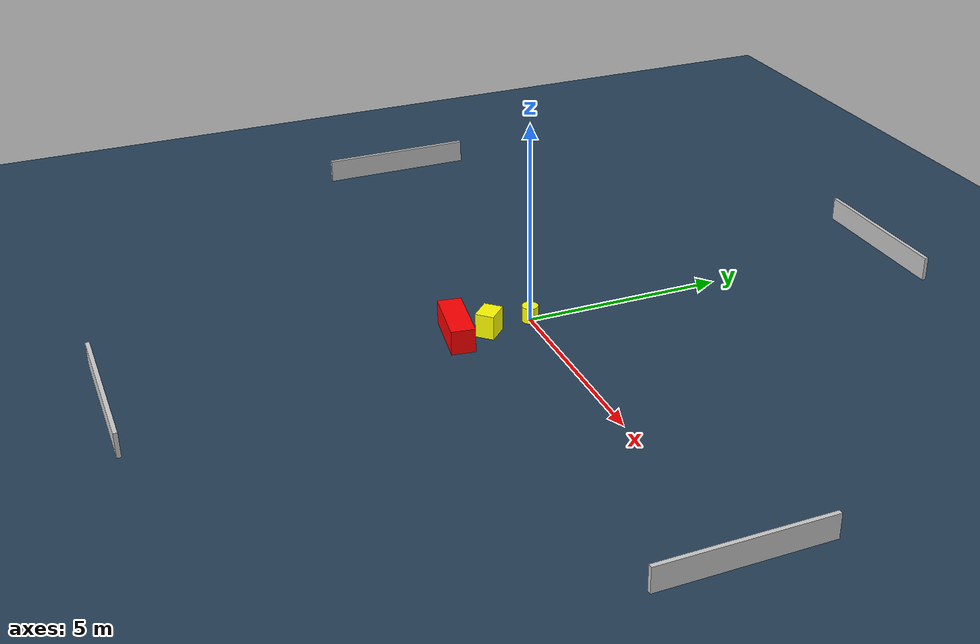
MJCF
<?xml version="1.0" ?>
<mujoco model="generated_environment">
  <option timestep="0.01" integrator="RK4" cone="elliptic"/>
  <default>
    <geom density="1"/>
  </default>
  <asset>
    <texture builtin="gradient" height="3072" name="skybox" rgb1="0.3 0.5 0.7" rgb2="0 0 0" type="skybox" width="512"/>
    <texture builtin="checker" height="300" name="groundplane" rgb1="0.2 0.3 0.4" rgb2="0.1 0.2 0.3" type="2d" width="300"/>
    <material name="groundplane" reflectance="0.2" texrepeat="5 5" texture="groundplane"/>
  </asset>
  <worldbody>
    <light dir="0 0 -1" directional="true" pos="0 0 1.5"/>
    <geom condim="3" friction="0.5 0.005 0.001" material="groundplane" name="floor" pos="0 0 0" size="0 0 0.05" type="plane"/>
    <body name="walls">
      <geom name="wall_1" condim="4" pos="-10.0 0.0 0.3" rgba="0.800000011920929 0.800000011920929 0.800000011920929 1.0" size="0.05 2.0 0.3" type="box"/>
      <geom name="wall_2" condim="4" pos="10.0 0.0 0.3" rgba="0.800000011920929 0.800000011920929 0.800000011920929 1.0" size="0.05 2.0 0.3" type="box"/>
      <geom name="wall_3" condim="4" pos="0.0 -10.0 0.3" rgba="0.800000011920929 0.800000011920929 0.800000011920929 1.0" size="2.0 0.05 0.3" type="box"/>
      <geom name="wall_4" condim="4" pos="0.0 10.0 0.3" rgba="0.800000011920929 0.800000011920929 0.800000011920929 1.0" size="2.0 0.05 0.3" type="box"/>
    </body>
    <body name="robot">
      <joint name="joint_x" type="slide" pos="0 0 0" axis="1 0 0"/>
      <joint name="joint_y" type="slide" pos="0 0 0" axis="0 1 0"/>
      <geom name="robot" type="cylinder" pos="0.0 0.0 0.2" size="0.2 0.2 0.0" mass="5.0" friction="1.0 0.005 0.0001" condim="4" rgba="1.0 1.0 0.0 1.0"/>
    </body>
    <body name="obstacle_1_movable">
      <geom name="obstacle_1_movable" condim="4" pos="0.18001756700477753 -1.12739128054355 0.3" euler="0 0 315.9948841031123" friction="0.0 0.005 0.001" rgba="1.0 1.0 0.0 1.0" size="0.290826906876138 0.23198697263688875 0.3" type="box" mass="0.1"/>
      <joint type="free"/>
    </body>
    <body name="obstacle_2_static">
      <geom name="obstacle_2_static" condim="4" pos="0.0732128163982614 -1.9131657451043749 0.3" euler="0 0 351.5380906731819" friction="0.0 0.005 0.001" rgba="1.0 0.0 0.0 1.0" size="0.7859664906812274 0.2904479826800511 0.3" type="box"/>
    </body>
  </worldbody>
  <actuator>
    <motor name="actuator_x" joint="joint_x" gear="1" ctrlrange="-1 1"/>
    <motor name="actuator_y" joint="joint_y" gear="1" ctrlrange="-1 1"/>
  </actuator>
</mujoco>
